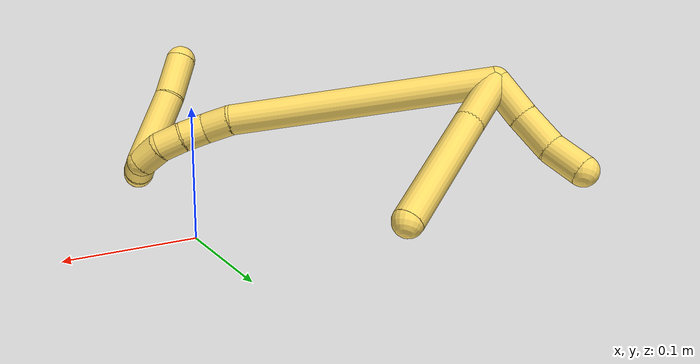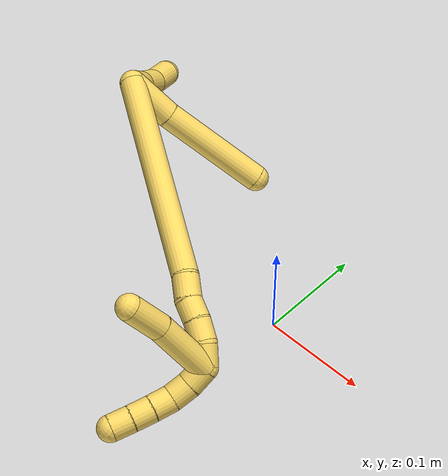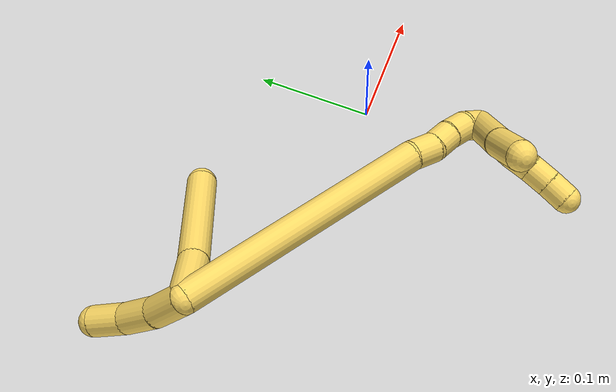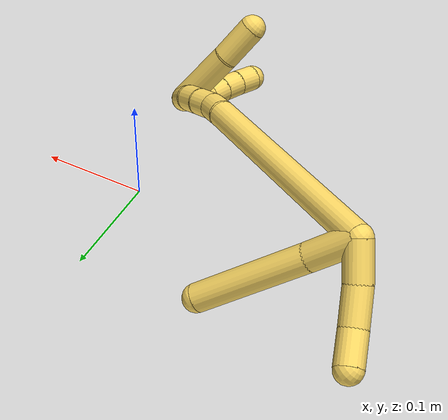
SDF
<sdf version="1.7">
 <world name="default">
  <model name="5">
   <static>0</static>
   <link name="5">
    <collision name="collision-cylinder-e_1_2_8">
     <pose>0.00609 -0.003817 -0.021639 2.96698 0.270389 1.99805</pose>
     <geometry><cylinder><radius>0.0125</radius><length>0.045603</length></cylinder></geometry>
     <surface>
      <friction><ode><mu>1.16</mu><mu2>1.16</mu2><slip1>0</slip1><slip2>0</slip2></ode></friction>
      <contact><ode><kp>1e+06</kp><kd>1</kd><max_vel>0</max_vel><min_depth>0.001</min_depth></ode></contact>
     </surface>
    </collision>
    <visual name="visual-cylinder-e_1_2_8">
     <pose>0.00609 -0.003817 -0.021639 2.96698 0.270389 1.99805</pose>
     <geometry><cylinder><radius>0.0125</radius><length>0.045603</length></cylinder></geometry>
     <material><ambient>1 0.858824 0.4 1</ambient></material>
    </visual>
    <collision name="collision-cylinder-e_2_8_6">
     <pose>0.028595 -0.011553 -0.092674 3.06244 0.319881 2.66019</pose>
     <geometry><cylinder><radius>0.0125</radius><length>0.104397</length></cylinder></geometry>
     <surface>
      <friction><ode><mu>1.16</mu><mu2>1.16</mu2><slip1>0</slip1><slip2>0</slip2></ode></friction>
      <contact><ode><kp>1e+06</kp><kd>1</kd><max_vel>0</max_vel><min_depth>0.001</min_depth></ode></contact>
     </surface>
    </collision>
    <visual name="visual-cylinder-e_2_8_6">
     <pose>0.028595 -0.011553 -0.092674 3.06244 0.319881 2.66019</pose>
     <geometry><cylinder><radius>0.0125</radius><length>0.104397</length></cylinder></geometry>
     <material><ambient>1 0.858824 0.4 1</ambient></material>
    </visual>
    <collision name="collision-cylinder-e_1_2_9">
     <pose>-0.012441 0.005934 -0.011092 -2.65039 -0.779868 2.04624</pose>
     <geometry><cylinder><radius>0.0125</radius><length>0.035385</length></cylinder></geometry>
     <surface>
      <friction><ode><mu>1.16</mu><mu2>1.16</mu2><slip1>0</slip1><slip2>0</slip2></ode></friction>
      <contact><ode><kp>1e+06</kp><kd>1</kd><max_vel>0</max_vel><min_depth>0.001</min_depth></ode></contact>
     </surface>
    </collision>
    <visual name="visual-cylinder-e_1_2_9">
     <pose>-0.012441 0.005934 -0.011092 -2.65039 -0.779868 2.04624</pose>
     <geometry><cylinder><radius>0.0125</radius><length>0.035385</length></cylinder></geometry>
     <material><ambient>1 0.858824 0.4 1</ambient></material>
    </visual>
    <collision name="collision-cylinder-e_2_9_10">
     <pose>-0.035072 0.019646 -0.033319 -2.5318 -0.643637 1.62848</pose>
     <geometry><cylinder><radius>0.0125</radius><length>0.033959</length></cylinder></geometry>
     <surface>
      <friction><ode><mu>1.16</mu><mu2>1.16</mu2><slip1>0</slip1><slip2>0</slip2></ode></friction>
      <contact><ode><kp>1e+06</kp><kd>1</kd><max_vel>0</max_vel><min_depth>0.001</min_depth></ode></contact>
     </surface>
    </collision>
    <visual name="visual-cylinder-e_2_9_10">
     <pose>-0.035072 0.019646 -0.033319 -2.5318 -0.643637 1.62848</pose>
     <geometry><cylinder><radius>0.0125</radius><length>0.033959</length></cylinder></geometry>
     <material><ambient>1 0.858824 0.4 1</ambient></material>
    </visual>
    <collision name="collision-cylinder-e_3_10_5">
     <pose>-0.05306 0.037555 -0.052908 -2.26631 -0.533791 1.05767</pose>
     <geometry><cylinder><radius>0.0125</radius><length>0.030656</length></cylinder></geometry>
     <surface>
      <friction><ode><mu>1.16</mu><mu2>1.16</mu2><slip1>0</slip1><slip2>0</slip2></ode></friction>
      <contact><ode><kp>1e+06</kp><kd>1</kd><max_vel>0</max_vel><min_depth>0.001</min_depth></ode></contact>
     </surface>
    </collision>
    <visual name="visual-cylinder-e_3_10_5">
     <pose>-0.05306 0.037555 -0.052908 -2.26631 -0.533791 1.05767</pose>
     <geometry><cylinder><radius>0.0125</radius><length>0.030656</length></cylinder></geometry>
     <material><ambient>1 0.858824 0.4 1</ambient></material>
    </visual>
    <collision name="collision-cylinder-e_1_2_11">
     <pose>0.066646 -0.077473 -0.032599 1.96909 0.670404 0.966123</pose>
     <geometry><cylinder><radius>0.0125</radius><length>0.214535</length></cylinder></geometry>
     <surface>
      <friction><ode><mu>1.16</mu><mu2>1.16</mu2><slip1>0</slip1><slip2>0</slip2></ode></friction>
      <contact><ode><kp>1e+06</kp><kd>1</kd><max_vel>0</max_vel><min_depth>0.001</min_depth></ode></contact>
     </surface>
    </collision>
    <visual name="visual-cylinder-e_1_2_11">
     <pose>0.066646 -0.077473 -0.032599 1.96909 0.670404 0.966123</pose>
     <geometry><cylinder><radius>0.0125</radius><length>0.214535</length></cylinder></geometry>
     <material><ambient>1 0.858824 0.4 1</ambient></material>
    </visual>
    <collision name="collision-cylinder-e_2_11_12">
     <pose>0.1383 -0.164382 -0.069384 1.9883 0.45172 0.67922</pose>
     <geometry><cylinder><radius>0.0125</radius><length>0.022949</length></cylinder></geometry>
     <surface>
      <friction><ode><mu>1.16</mu><mu2>1.16</mu2><slip1>0</slip1><slip2>0</slip2></ode></friction>
      <contact><ode><kp>1e+06</kp><kd>1</kd><max_vel>0</max_vel><min_depth>0.001</min_depth></ode></contact>
     </surface>
    </collision>
    <visual name="visual-cylinder-e_2_11_12">
     <pose>0.1383 -0.164382 -0.069384 1.9883 0.45172 0.67922</pose>
     <geometry><cylinder><radius>0.0125</radius><length>0.022949</length></cylinder></geometry>
     <material><ambient>1 0.858824 0.4 1</ambient></material>
    </visual>
    <collision name="collision-cylinder-e_3_12_13">
     <pose>0.14886 -0.180364 -0.078846 2.2492 0.583608 1.12139</pose>
     <geometry><cylinder><radius>0.0125</radius><length>0.020149</length></cylinder></geometry>
     <surface>
      <friction><ode><mu>1.16</mu><mu2>1.16</mu2><slip1>0</slip1><slip2>0</slip2></ode></friction>
      <contact><ode><kp>1e+06</kp><kd>1</kd><max_vel>0</max_vel><min_depth>0.001</min_depth></ode></contact>
     </surface>
    </collision>
    <visual name="visual-cylinder-e_3_12_13">
     <pose>0.14886 -0.180364 -0.078846 2.2492 0.583608 1.12139</pose>
     <geometry><cylinder><radius>0.0125</radius><length>0.020149</length></cylinder></geometry>
     <material><ambient>1 0.858824 0.4 1</ambient></material>
    </visual>
    <collision name="collision-cylinder-e_4_13_14">
     <pose>0.159002 -0.194529 -0.089496 2.18507 0.45744 0.844146</pose>
     <geometry><cylinder><radius>0.0125</radius><length>0.020784</length></cylinder></geometry>
     <surface>
      <friction><ode><mu>1.16</mu><mu2>1.16</mu2><slip1>0</slip1><slip2>0</slip2></ode></friction>
      <contact><ode><kp>1e+06</kp><kd>1</kd><max_vel>0</max_vel><min_depth>0.001</min_depth></ode></contact>
     </surface>
    </collision>
    <visual name="visual-cylinder-e_4_13_14">
     <pose>0.159002 -0.194529 -0.089496 2.18507 0.45744 0.844146</pose>
     <geometry><cylinder><radius>0.0125</radius><length>0.020784</length></cylinder></geometry>
     <material><ambient>1 0.858824 0.4 1</ambient></material>
    </visual>
    <collision name="collision-cylinder-e_5_14_1">
     <pose>0.165096 -0.211291 -0.100401 2.11488 0.139879 0.247251</pose>
     <geometry><cylinder><radius>0.0125</radius><length>0.021582</length></cylinder></geometry>
     <surface>
      <friction><ode><mu>1.16</mu><mu2>1.16</mu2><slip1>0</slip1><slip2>0</slip2></ode></friction>
      <contact><ode><kp>1e+06</kp><kd>1</kd><max_vel>0</max_vel><min_depth>0.001</min_depth></ode></contact>
     </surface>
    </collision>
    <visual name="visual-cylinder-e_5_14_1">
     <pose>0.165096 -0.211291 -0.100401 2.11488 0.139879 0.247251</pose>
     <geometry><cylinder><radius>0.0125</radius><length>0.021582</length></cylinder></geometry>
     <material><ambient>1 0.858824 0.4 1</ambient></material>
    </visual>
    <collision name="collision-cylinder-e_1_1_15">
     <pose>0.166728 -0.216683 -0.075223 -0.121547 0.004137 -0.000252</pose>
     <geometry><cylinder><radius>0.0125</radius><length>0.061876</length></cylinder></geometry>
     <surface>
      <friction><ode><mu>1.16</mu><mu2>1.16</mu2><slip1>0</slip1><slip2>0</slip2></ode></friction>
      <contact><ode><kp>1e+06</kp><kd>1</kd><max_vel>0</max_vel><min_depth>0.001</min_depth></ode></contact>
     </surface>
    </collision>
    <visual name="visual-cylinder-e_1_1_15">
     <pose>0.166728 -0.216683 -0.075223 -0.121547 0.004137 -0.000252</pose>
     <geometry><cylinder><radius>0.0125</radius><length>0.061876</length></cylinder></geometry>
     <material><ambient>1 0.858824 0.4 1</ambient></material>
    </visual>
    <collision name="collision-cylinder-e_2_15_4">
     <pose>0.167653 -0.213408 -0.025474 0.025 0.041794 0.000523</pose>
     <geometry><cylinder><radius>0.0125</radius><length>0.038124</length></cylinder></geometry>
     <surface>
      <friction><ode><mu>1.16</mu><mu2>1.16</mu2><slip1>0</slip1><slip2>0</slip2></ode></friction>
      <contact><ode><kp>1e+06</kp><kd>1</kd><max_vel>0</max_vel><min_depth>0.001</min_depth></ode></contact>
     </surface>
    </collision>
    <visual name="visual-cylinder-e_2_15_4">
     <pose>0.167653 -0.213408 -0.025474 0.025 0.041794 0.000523</pose>
     <geometry><cylinder><radius>0.0125</radius><length>0.038124</length></cylinder></geometry>
     <material><ambient>1 0.858824 0.4 1</ambient></material>
    </visual>
    <collision name="collision-cylinder-e_1_1_16">
     <pose>0.162731 -0.229647 -0.105537 1.52787 -0.397265 -0.380976</pose>
     <geometry><cylinder><radius>0.0125</radius><length>0.02</length></cylinder></geometry>
     <surface>
      <friction><ode><mu>1.16</mu><mu2>1.16</mu2><slip1>0</slip1><slip2>0</slip2></ode></friction>
      <contact><ode><kp>1e+06</kp><kd>1</kd><max_vel>0</max_vel><min_depth>0.001</min_depth></ode></contact>
     </surface>
    </collision>
    <visual name="visual-cylinder-e_1_1_16">
     <pose>0.162731 -0.229647 -0.105537 1.52787 -0.397265 -0.380976</pose>
     <geometry><cylinder><radius>0.0125</radius><length>0.02</length></cylinder></geometry>
     <material><ambient>1 0.858824 0.4 1</ambient></material>
    </visual>
    <collision name="collision-cylinder-e_2_16_17">
     <pose>0.15508 -0.247778 -0.102659 1.29937 -0.387846 -0.296216</pose>
     <geometry><cylinder><radius>0.0125</radius><length>0.02</length></cylinder></geometry>
     <surface>
      <friction><ode><mu>1.16</mu><mu2>1.16</mu2><slip1>0</slip1><slip2>0</slip2></ode></friction>
      <contact><ode><kp>1e+06</kp><kd>1</kd><max_vel>0</max_vel><min_depth>0.001</min_depth></ode></contact>
     </surface>
    </collision>
    <visual name="visual-cylinder-e_2_16_17">
     <pose>0.15508 -0.247778 -0.102659 1.29937 -0.387846 -0.296216</pose>
     <geometry><cylinder><radius>0.0125</radius><length>0.02</length></cylinder></geometry>
     <material><ambient>1 0.858824 0.4 1</ambient></material>
    </visual>
    <collision name="collision-cylinder-e_3_17_18">
     <pose>0.148648 -0.264964 -0.095217 1.03044 -0.268271 -0.152525</pose>
     <geometry><cylinder><radius>0.0125</radius><length>0.02</length></cylinder></geometry>
     <surface>
      <friction><ode><mu>1.16</mu><mu2>1.16</mu2><slip1>0</slip1><slip2>0</slip2></ode></friction>
      <contact><ode><kp>1e+06</kp><kd>1</kd><max_vel>0</max_vel><min_depth>0.001</min_depth></ode></contact>
     </surface>
    </collision>
    <visual name="visual-cylinder-e_3_17_18">
     <pose>0.148648 -0.264964 -0.095217 1.03044 -0.268271 -0.152525</pose>
     <geometry><cylinder><radius>0.0125</radius><length>0.02</length></cylinder></geometry>
     <material><ambient>1 0.858824 0.4 1</ambient></material>
    </visual>
    <collision name="collision-cylinder-e_4_18_19">
     <pose>0.142835 -0.281308 -0.085277 1.01825 -0.32178 -0.180693</pose>
     <geometry><cylinder><radius>0.0125</radius><length>0.02</length></cylinder></geometry>
     <surface>
      <friction><ode><mu>1.16</mu><mu2>1.16</mu2><slip1>0</slip1><slip2>0</slip2></ode></friction>
      <contact><ode><kp>1e+06</kp><kd>1</kd><max_vel>0</max_vel><min_depth>0.001</min_depth></ode></contact>
     </surface>
    </collision>
    <visual name="visual-cylinder-e_4_18_19">
     <pose>0.142835 -0.281308 -0.085277 1.01825 -0.32178 -0.180693</pose>
     <geometry><cylinder><radius>0.0125</radius><length>0.02</length></cylinder></geometry>
     <material><ambient>1 0.858824 0.4 1</ambient></material>
    </visual>
    <collision name="collision-cylinder-e_5_19_3">
     <pose>0.136082 -0.297281 -0.075325 1.00887 -0.36719 -0.204312</pose>
     <geometry><cylinder><radius>0.0125</radius><length>0.02</length></cylinder></geometry>
     <surface>
      <friction><ode><mu>1.16</mu><mu2>1.16</mu2><slip1>0</slip1><slip2>0</slip2></ode></friction>
      <contact><ode><kp>1e+06</kp><kd>1</kd><max_vel>0</max_vel><min_depth>0.001</min_depth></ode></contact>
     </surface>
    </collision>
    <visual name="visual-cylinder-e_5_19_3">
     <pose>0.136082 -0.297281 -0.075325 1.00887 -0.36719 -0.204312</pose>
     <geometry><cylinder><radius>0.0125</radius><length>0.02</length></cylinder></geometry>
     <material><ambient>1 0.858824 0.4 1</ambient></material>
    </visual>
    <collision name="collision-sphere-3">
     <pose>0.132492 -0.305179 -0.070352 0 -0 0</pose>
     <geometry><sphere><radius>0.0125</radius></sphere></geometry>
     <surface>
      <friction><ode><mu>1.16</mu><mu2>1.16</mu2><slip1>0</slip1><slip2>0</slip2></ode></friction>
      <contact><ode><kp>1e+06</kp><kd>1</kd><max_vel>0</max_vel><min_depth>0.001</min_depth></ode></contact>
     </surface>
    </collision>
    <visual name="visual-sphere-3">
     <pose>0.132492 -0.305179 -0.070352 0 -0 0</pose>
     <geometry><sphere><radius>0.0125</radius></sphere></geometry>
     <material><ambient>1 0.858824 0.4 1</ambient></material>
    </visual>
    <collision name="collision-sphere-19">
     <pose>0.139672 -0.289383 -0.080298 0 -0 0</pose>
     <geometry><sphere><radius>0.0125</radius></sphere></geometry>
     <surface>
      <friction><ode><mu>1.16</mu><mu2>1.16</mu2><slip1>0</slip1><slip2>0</slip2></ode></friction>
      <contact><ode><kp>1e+06</kp><kd>1</kd><max_vel>0</max_vel><min_depth>0.001</min_depth></ode></contact>
     </surface>
    </collision>
    <visual name="visual-sphere-19">
     <pose>0.139672 -0.289383 -0.080298 0 -0 0</pose>
     <geometry><sphere><radius>0.0125</radius></sphere></geometry>
     <material><ambient>1 0.858824 0.4 1</ambient></material>
    </visual>
    <collision name="collision-sphere-5">
     <pose>-0.060859 0.047685 -0.061364 0 -0 0</pose>
     <geometry><sphere><radius>0.0125</radius></sphere></geometry>
     <surface>
      <friction><ode><mu>1.16</mu><mu2>1.16</mu2><slip1>0</slip1><slip2>0</slip2></ode></friction>
      <contact><ode><kp>1e+06</kp><kd>1</kd><max_vel>0</max_vel><min_depth>0.001</min_depth></ode></contact>
     </surface>
    </collision>
    <visual name="visual-sphere-5">
     <pose>-0.060859 0.047685 -0.061364 0 -0 0</pose>
     <geometry><sphere><radius>0.0125</radius></sphere></geometry>
     <material><ambient>1 0.858824 0.4 1</ambient></material>
    </visual>
    <collision name="collision-sphere-10">
     <pose>-0.045261 0.027424 -0.044453 0 -0 0</pose>
     <geometry><sphere><radius>0.0125</radius></sphere></geometry>
     <surface>
      <friction><ode><mu>1.16</mu><mu2>1.16</mu2><slip1>0</slip1><slip2>0</slip2></ode></friction>
      <contact><ode><kp>1e+06</kp><kd>1</kd><max_vel>0</max_vel><min_depth>0.001</min_depth></ode></contact>
     </surface>
    </collision>
    <visual name="visual-sphere-10">
     <pose>-0.045261 0.027424 -0.044453 0 -0 0</pose>
     <geometry><sphere><radius>0.0125</radius></sphere></geometry>
     <material><ambient>1 0.858824 0.4 1</ambient></material>
    </visual>
    <collision name="collision-sphere-6">
     <pose>0.045009 -0.015471 -0.142069 0 -0 0</pose>
     <geometry><sphere><radius>0.0125</radius></sphere></geometry>
     <surface>
      <friction><ode><mu>1.16</mu><mu2>1.16</mu2><slip1>0</slip1><slip2>0</slip2></ode></friction>
      <contact><ode><kp>1e+06</kp><kd>1</kd><max_vel>0</max_vel><min_depth>0.001</min_depth></ode></contact>
     </surface>
    </collision>
    <visual name="visual-sphere-6">
     <pose>0.045009 -0.015471 -0.142069 0 -0 0</pose>
     <geometry><sphere><radius>0.0125</radius></sphere></geometry>
     <material><ambient>1 0.858824 0.4 1</ambient></material>
    </visual>
    <collision name="collision-sphere-9">
     <pose>-0.024882 0.011867 -0.022184 0 -0 0</pose>
     <geometry><sphere><radius>0.0125</radius></sphere></geometry>
     <surface>
      <friction><ode><mu>1.16</mu><mu2>1.16</mu2><slip1>0</slip1><slip2>0</slip2></ode></friction>
      <contact><ode><kp>1e+06</kp><kd>1</kd><max_vel>0</max_vel><min_depth>0.001</min_depth></ode></contact>
     </surface>
    </collision>
    <visual name="visual-sphere-9">
     <pose>-0.024882 0.011867 -0.022184 0 -0 0</pose>
     <geometry><sphere><radius>0.0125</radius></sphere></geometry>
     <material><ambient>1 0.858824 0.4 1</ambient></material>
    </visual>
    <collision name="collision-sphere-2">
     <geometry><sphere><radius>0.0125</radius></sphere></geometry>
     <surface>
      <friction><ode><mu>1.16</mu><mu2>1.16</mu2><slip1>0</slip1><slip2>0</slip2></ode></friction>
      <contact><ode><kp>1e+06</kp><kd>1</kd><max_vel>0</max_vel><min_depth>0.001</min_depth></ode></contact>
     </surface>
    </collision>
    <visual name="visual-sphere-2">
     <geometry><sphere><radius>0.0125</radius></sphere></geometry>
     <material><ambient>1 0.858824 0.4 1</ambient></material>
    </visual>
    <collision name="collision-sphere-8">
     <pose>0.012181 -0.007635 -0.043278 0 -0 0</pose>
     <geometry><sphere><radius>0.0125</radius></sphere></geometry>
     <surface>
      <friction><ode><mu>1.16</mu><mu2>1.16</mu2><slip1>0</slip1><slip2>0</slip2></ode></friction>
      <contact><ode><kp>1e+06</kp><kd>1</kd><max_vel>0</max_vel><min_depth>0.001</min_depth></ode></contact>
     </surface>
    </collision>
    <visual name="visual-sphere-8">
     <pose>0.012181 -0.007635 -0.043278 0 -0 0</pose>
     <geometry><sphere><radius>0.0125</radius></sphere></geometry>
     <material><ambient>1 0.858824 0.4 1</ambient></material>
    </visual>
    <collision name="collision-sphere-11">
     <pose>0.133291 -0.154945 -0.065198 0 -0 0</pose>
     <geometry><sphere><radius>0.0125</radius></sphere></geometry>
     <surface>
      <friction><ode><mu>1.16</mu><mu2>1.16</mu2><slip1>0</slip1><slip2>0</slip2></ode></friction>
      <contact><ode><kp>1e+06</kp><kd>1</kd><max_vel>0</max_vel><min_depth>0.001</min_depth></ode></contact>
     </surface>
    </collision>
    <visual name="visual-sphere-11">
     <pose>0.133291 -0.154945 -0.065198 0 -0 0</pose>
     <geometry><sphere><radius>0.0125</radius></sphere></geometry>
     <material><ambient>1 0.858824 0.4 1</ambient></material>
    </visual>
    <collision name="collision-sphere-12">
     <pose>0.143309 -0.173819 -0.07357 0 -0 0</pose>
     <geometry><sphere><radius>0.0125</radius></sphere></geometry>
     <surface>
      <friction><ode><mu>1.16</mu><mu2>1.16</mu2><slip1>0</slip1><slip2>0</slip2></ode></friction>
      <contact><ode><kp>1e+06</kp><kd>1</kd><max_vel>0</max_vel><min_depth>0.001</min_depth></ode></contact>
     </surface>
    </collision>
    <visual name="visual-sphere-12">
     <pose>0.143309 -0.173819 -0.07357 0 -0 0</pose>
     <geometry><sphere><radius>0.0125</radius></sphere></geometry>
     <material><ambient>1 0.858824 0.4 1</ambient></material>
    </visual>
    <collision name="collision-sphere-13">
     <pose>0.154412 -0.18691 -0.084122 0 -0 0</pose>
     <geometry><sphere><radius>0.0125</radius></sphere></geometry>
     <surface>
      <friction><ode><mu>1.16</mu><mu2>1.16</mu2><slip1>0</slip1><slip2>0</slip2></ode></friction>
      <contact><ode><kp>1e+06</kp><kd>1</kd><max_vel>0</max_vel><min_depth>0.001</min_depth></ode></contact>
     </surface>
    </collision>
    <visual name="visual-sphere-13">
     <pose>0.154412 -0.18691 -0.084122 0 -0 0</pose>
     <geometry><sphere><radius>0.0125</radius></sphere></geometry>
     <material><ambient>1 0.858824 0.4 1</ambient></material>
    </visual>
    <collision name="collision-sphere-14">
     <pose>0.163591 -0.202148 -0.09487 0 -0 0</pose>
     <geometry><sphere><radius>0.0125</radius></sphere></geometry>
     <surface>
      <friction><ode><mu>1.16</mu><mu2>1.16</mu2><slip1>0</slip1><slip2>0</slip2></ode></friction>
      <contact><ode><kp>1e+06</kp><kd>1</kd><max_vel>0</max_vel><min_depth>0.001</min_depth></ode></contact>
     </surface>
    </collision>
    <visual name="visual-sphere-14">
     <pose>0.163591 -0.202148 -0.09487 0 -0 0</pose>
     <geometry><sphere><radius>0.0125</radius></sphere></geometry>
     <material><ambient>1 0.858824 0.4 1</ambient></material>
    </visual>
    <collision name="collision-sphere-1">
     <pose>0.1666 -0.220434 -0.105932 0 -0 0</pose>
     <geometry><sphere><radius>0.0125</radius></sphere></geometry>
     <surface>
      <friction><ode><mu>1.16</mu><mu2>1.16</mu2><slip1>0</slip1><slip2>0</slip2></ode></friction>
      <contact><ode><kp>1e+06</kp><kd>1</kd><max_vel>0</max_vel><min_depth>0.001</min_depth></ode></contact>
     </surface>
    </collision>
    <visual name="visual-sphere-1">
     <pose>0.1666 -0.220434 -0.105932 0 -0 0</pose>
     <geometry><sphere><radius>0.0125</radius></sphere></geometry>
     <material><ambient>1 0.858824 0.4 1</ambient></material>
    </visual>
    <collision name="collision-sphere-18">
     <pose>0.145997 -0.273233 -0.090256 0 -0 0</pose>
     <geometry><sphere><radius>0.0125</radius></sphere></geometry>
     <surface>
      <friction><ode><mu>1.16</mu><mu2>1.16</mu2><slip1>0</slip1><slip2>0</slip2></ode></friction>
      <contact><ode><kp>1e+06</kp><kd>1</kd><max_vel>0</max_vel><min_depth>0.001</min_depth></ode></contact>
     </surface>
    </collision>
    <visual name="visual-sphere-18">
     <pose>0.145997 -0.273233 -0.090256 0 -0 0</pose>
     <geometry><sphere><radius>0.0125</radius></sphere></geometry>
     <material><ambient>1 0.858824 0.4 1</ambient></material>
    </visual>
    <collision name="collision-sphere-15">
     <pose>0.166856 -0.212931 -0.044513 0 -0 0</pose>
     <geometry><sphere><radius>0.0125</radius></sphere></geometry>
     <surface>
      <friction><ode><mu>1.16</mu><mu2>1.16</mu2><slip1>0</slip1><slip2>0</slip2></ode></friction>
      <contact><ode><kp>1e+06</kp><kd>1</kd><max_vel>0</max_vel><min_depth>0.001</min_depth></ode></contact>
     </surface>
    </collision>
    <visual name="visual-sphere-15">
     <pose>0.166856 -0.212931 -0.044513 0 -0 0</pose>
     <geometry><sphere><radius>0.0125</radius></sphere></geometry>
     <material><ambient>1 0.858824 0.4 1</ambient></material>
    </visual>
    <collision name="collision-sphere-4">
     <pose>0.168449 -0.213884 -0.006434 0 -0 0</pose>
     <geometry><sphere><radius>0.0125</radius></sphere></geometry>
     <surface>
      <friction><ode><mu>1.16</mu><mu2>1.16</mu2><slip1>0</slip1><slip2>0</slip2></ode></friction>
      <contact><ode><kp>1e+06</kp><kd>1</kd><max_vel>0</max_vel><min_depth>0.001</min_depth></ode></contact>
     </surface>
    </collision>
    <visual name="visual-sphere-4">
     <pose>0.168449 -0.213884 -0.006434 0 -0 0</pose>
     <geometry><sphere><radius>0.0125</radius></sphere></geometry>
     <material><ambient>1 0.858824 0.4 1</ambient></material>
    </visual>
    <collision name="collision-sphere-16">
     <pose>0.158862 -0.238859 -0.105141 0 -0 0</pose>
     <geometry><sphere><radius>0.0125</radius></sphere></geometry>
     <surface>
      <friction><ode><mu>1.16</mu><mu2>1.16</mu2><slip1>0</slip1><slip2>0</slip2></ode></friction>
      <contact><ode><kp>1e+06</kp><kd>1</kd><max_vel>0</max_vel><min_depth>0.001</min_depth></ode></contact>
     </surface>
    </collision>
    <visual name="visual-sphere-16">
     <pose>0.158862 -0.238859 -0.105141 0 -0 0</pose>
     <geometry><sphere><radius>0.0125</radius></sphere></geometry>
     <material><ambient>1 0.858824 0.4 1</ambient></material>
    </visual>
    <collision name="collision-sphere-17">
     <pose>0.151298 -0.256696 -0.100177 0 -0 0</pose>
     <geometry><sphere><radius>0.0125</radius></sphere></geometry>
     <surface>
      <friction><ode><mu>1.16</mu><mu2>1.16</mu2><slip1>0</slip1><slip2>0</slip2></ode></friction>
      <contact><ode><kp>1e+06</kp><kd>1</kd><max_vel>0</max_vel><min_depth>0.001</min_depth></ode></contact>
     </surface>
    </collision>
    <visual name="visual-sphere-17">
     <pose>0.151298 -0.256696 -0.100177 0 -0 0</pose>
     <geometry><sphere><radius>0.0125</radius></sphere></geometry>
     <material><ambient>1 0.858824 0.4 1</ambient></material>
    </visual>
    <inertial>
     <pose>0.078613 -0.106594 -0.05722 0 -0 0</pose>
     <mass>0.75</mass>
     <inertia>
      <ixx>0.000931</ixx>
      <ixy>0</ixy>
      <ixz>0</ixz>
      <iyy>0.000916</iyy>
      <iyz>0</iyz>
      <izz>5.6e-05</izz>
     </inertia>
    </inertial>
   </link>
   <pose>-0.23463 0.056275 0.107756 0.49618 -0.59929 -0.048376</pose>
  </model>
 </world>
</sdf>
